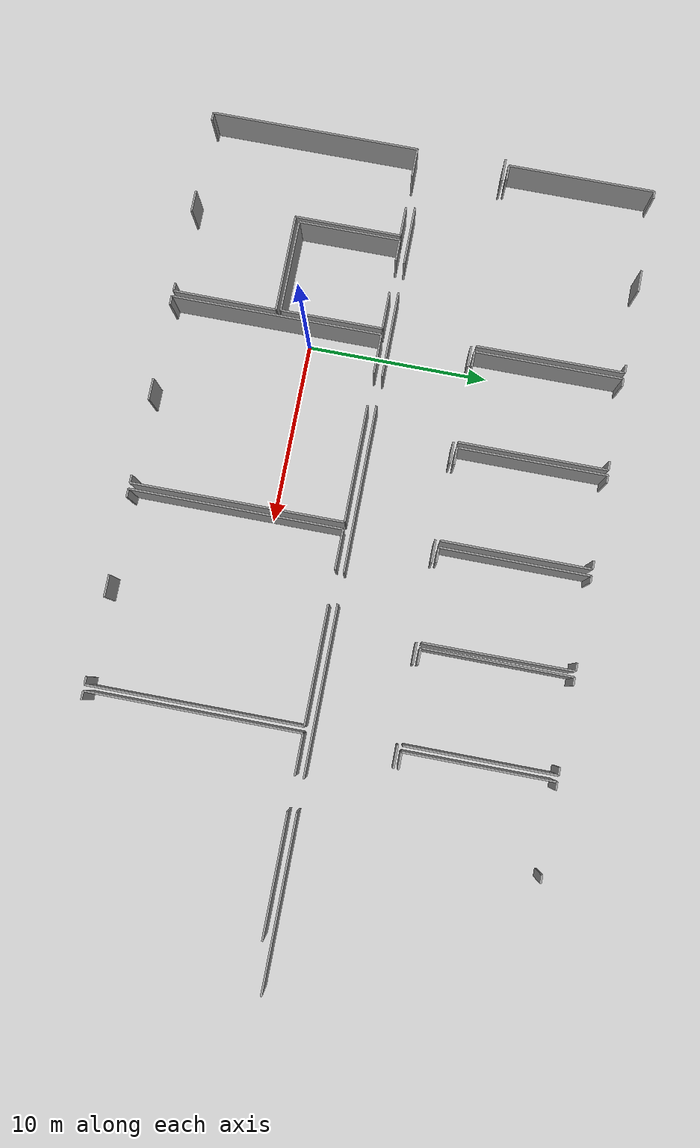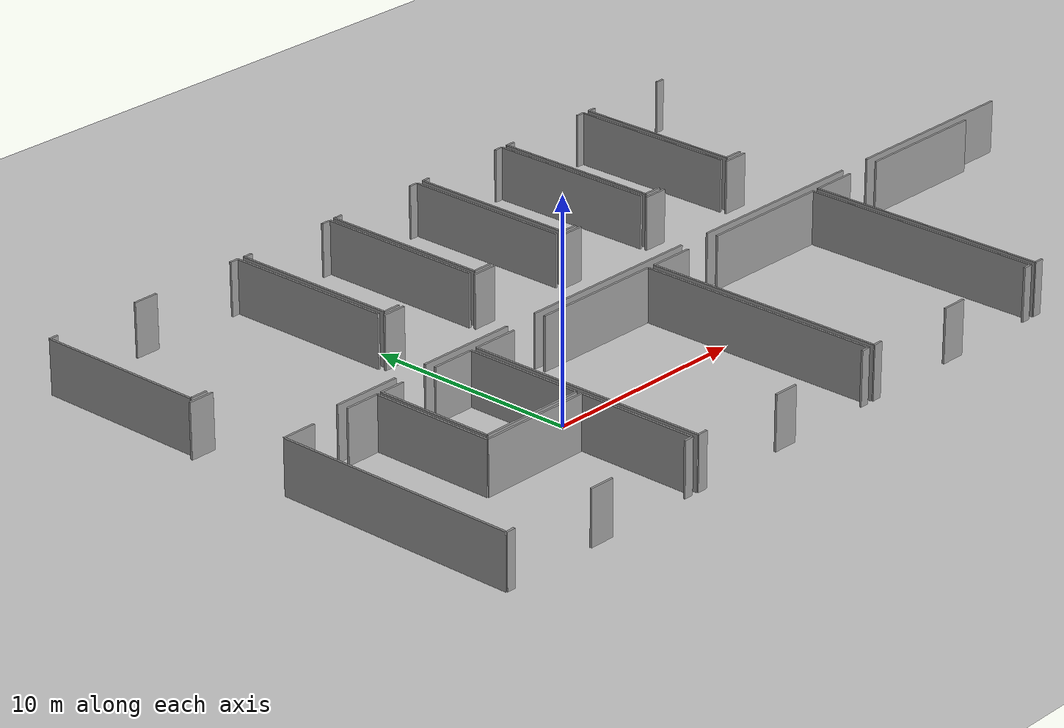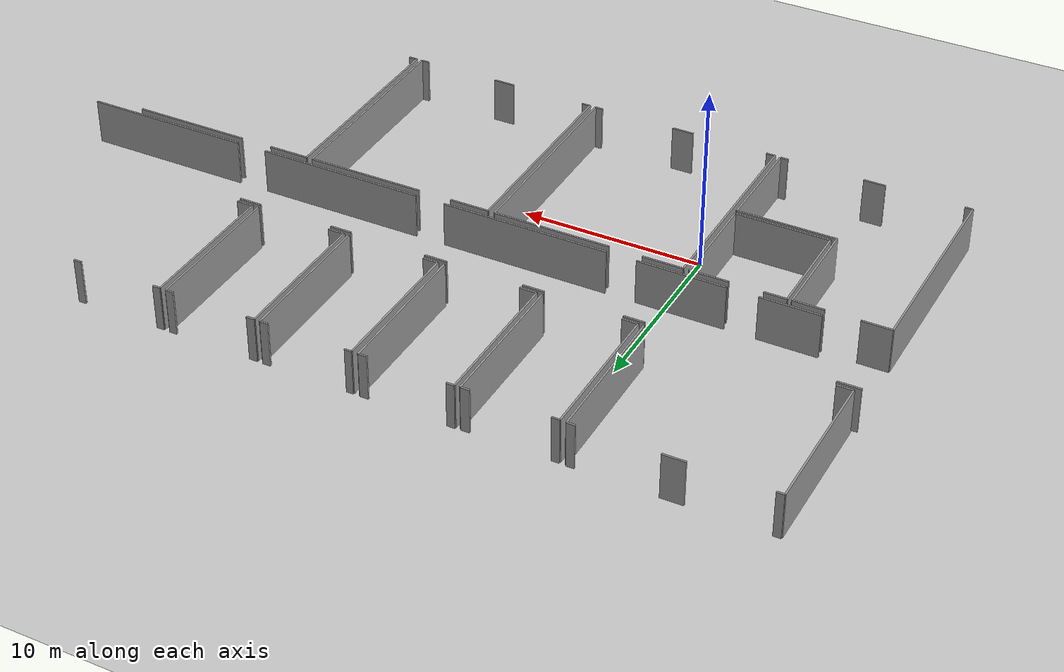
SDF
<sdf version="1.6">
 <world name="default">
  <model name="ground_plane">
   <static>1</static>
   <link name="link">
    <collision name="collision">
     <geometry><plane><normal>0 0 1</normal><size>100 100</size></plane></geometry>
     <surface><friction><ode><mu>100</mu><mu2>50</mu2></ode></friction></surface>
    </collision>
    <visual name="visual">
     <cast_shadows>0</cast_shadows>
     <geometry><plane><normal>0 0 1</normal><size>100 100</size></plane></geometry>
     <material>
      <script><uri>file://media/materials/scripts/gazebo.material</uri><name>Gazebo/Grey</name></script>
     </material>
    </visual>
   </link>
  </model>
  <model name="50037764_PLAN2">
   <static>1</static>
   <link name="Wall_271">
    <collision name="Wall_271_Collision">
     <geometry><box><size>1.23849712746 0.1 2.5</size></box></geometry>
     <pose>0.61924856373 0 1.25 0 0 0</pose>
    </collision>
    <visual name="Wall_271_Visual">
     <pose>0.61924856373 0 1.25 0 0 0</pose>
     <geometry><box><size>1.23849712746 0.1 2.5</size></box></geometry>
     <material>
      <script><uri>file://media/materials/scripts/gazebo.material</uri><name>Gazebo/Grey</name></script>
      <ambient>1 1 1 1</ambient>
     </material>
    </visual>
    <pose>157.565153287 -12.4780873456 0 0 0 3.14159265359</pose>
   </link>
   <link name="Wall_272">
    <collision name="Wall_272_Collision">
     <geometry><box><size>1.18689308048 0.1 2.5</size></box></geometry>
     <pose>0.593446540241 0 1.25 0 0 0</pose>
    </collision>
    <visual name="Wall_272_Visual">
     <pose>0.593446540241 0 1.25 0 0 0</pose>
     <geometry><box><size>1.18689308048 0.1 2.5</size></box></geometry>
     <material>
      <script><uri>file://media/materials/scripts/gazebo.material</uri><name>Gazebo/Grey</name></script>
      <ambient>1 1 1 1</ambient>
     </material>
    </visual>
    <pose>152.171386446 -12.4780873456 0 0 0 3.14159265359</pose>
   </link>
   <link name="Wall_273">
    <collision name="Wall_273_Collision">
     <geometry><box><size>1.23875133459 0.1 2.5</size></box></geometry>
     <pose>0.619375667294 0 1.25 0 0 0</pose>
    </collision>
    <visual name="Wall_273_Visual">
     <pose>0.619375667294 0 1.25 0 0 0</pose>
     <geometry><box><size>1.23875133459 0.1 2.5</size></box></geometry>
     <material>
      <script><uri>file://media/materials/scripts/gazebo.material</uri><name>Gazebo/Grey</name></script>
      <ambient>1 1 1 1</ambient>
     </material>
    </visual>
    <pose>146.759316691 -12.4780873456 0 0 0 3.14159265359</pose>
   </link>
   <link name="Wall_274">
    <collision name="Wall_274_Collision">
     <geometry><box><size>1.17291168844 0.1 2.5</size></box></geometry>
     <pose>0.586455844222 0 1.25 0 0 0</pose>
    </collision>
    <visual name="Wall_274_Visual">
     <pose>0.586455844222 0 1.25 0 0 0</pose>
     <geometry><box><size>1.17291168844 0.1 2.5</size></box></geometry>
     <material>
      <script><uri>file://media/materials/scripts/gazebo.material</uri><name>Gazebo/Grey</name></script>
      <ambient>1 1 1 1</ambient>
     </material>
    </visual>
    <pose>141.341145966 -12.4780873456 0 0 0 3.14159265359</pose>
   </link>
   <link name="Wall_275">
    <collision name="Wall_275_Collision">
     <geometry><box><size>1.13350958361 0.1 2.5</size></box></geometry>
     <pose>0.566754791804 0 1.25 0 0 0</pose>
    </collision>
    <visual name="Wall_275_Visual">
     <pose>0.566754791804 0 1.25 0 0 0</pose>
     <geometry><box><size>1.13350958361 0.1 2.5</size></box></geometry>
     <material>
      <script><uri>file://media/materials/scripts/gazebo.material</uri><name>Gazebo/Grey</name></script>
      <ambient>1 1 1 1</ambient>
     </material>
    </visual>
    <pose>135.953225888 -12.4780873456 0 0 0 3.14159265359</pose>
   </link>
   <link name="Wall_276">
    <collision name="Wall_276_Collision">
     <geometry><box><size>1.23442981341 0.1 2.5</size></box></geometry>
     <pose>0.617214906706 0 1.25 0 0 0</pose>
    </collision>
    <visual name="Wall_276_Visual">
     <pose>0.617214906706 0 1.25 0 0 0</pose>
     <geometry><box><size>1.23442981341 0.1 2.5</size></box></geometry>
     <material>
      <script><uri>file://media/materials/scripts/gazebo.material</uri><name>Gazebo/Grey</name></script>
      <ambient>1 1 1 1</ambient>
     </material>
    </visual>
    <pose>125.183232498 -12.4780873456 0 0 0 3.14159265359</pose>
   </link>
   <link name="Wall_281">
    <collision name="Wall_281_Collision">
     <geometry><box><size>3.2530886166 0.1 2.5</size></box></geometry>
     <pose>1.6265443083 0 1.25 0 0 0</pose>
    </collision>
    <visual name="Wall_281_Visual">
     <pose>1.6265443083 0 1.25 0 0 0</pose>
     <geometry><box><size>3.2530886166 0.1 2.5</size></box></geometry>
     <material>
      <script><uri>file://media/materials/scripts/gazebo.material</uri><name>Gazebo/Grey</name></script>
      <ambient>1 1 1 1</ambient>
     </material>
    </visual>
    <pose>127.630484519 -16.8886826987 0 0 0 0.0</pose>
   </link>
   <link name="Wall_282">
    <collision name="Wall_282_Collision">
     <geometry><box><size>4.8027352687 0.1 2.5</size></box></geometry>
     <pose>2.40136763435 0 1.25 0 0 0</pose>
    </collision>
    <visual name="Wall_282_Visual">
     <pose>2.40136763435 0 1.25 0 0 0</pose>
     <geometry><box><size>4.8027352687 0.1 2.5</size></box></geometry>
     <material>
      <script><uri>file://media/materials/scripts/gazebo.material</uri><name>Gazebo/Grey</name></script>
      <ambient>1 1 1 1</ambient>
     </material>
    </visual>
    <pose>132.553459759 -16.8886826987 0 0 0 0.0</pose>
   </link>
   <link name="Wall_283">
    <collision name="Wall_283_Collision">
     <geometry><box><size>9.1628959276 0.1 2.5</size></box></geometry>
     <pose>4.5814479638 0 1.25 0 0 0</pose>
    </collision>
    <visual name="Wall_283_Visual">
     <pose>4.5814479638 0 1.25 0 0 0</pose>
     <geometry><box><size>9.1628959276 0.1 2.5</size></box></geometry>
     <material>
      <script><uri>file://media/materials/scripts/gazebo.material</uri><name>Gazebo/Grey</name></script>
      <ambient>1 1 1 1</ambient>
     </material>
    </visual>
    <pose>138.999135696 -16.8886826987 0 0 0 0.0</pose>
   </link>
   <link name="Wall_284">
    <collision name="Wall_284_Collision">
     <geometry><box><size>9.12756113681 0.1 2.5</size></box></geometry>
     <pose>4.56378056841 0 1.25 0 0 0</pose>
    </collision>
    <visual name="Wall_284_Visual">
     <pose>4.56378056841 0 1.25 0 0 0</pose>
     <geometry><box><size>9.12756113681 0.1 2.5</size></box></geometry>
     <material>
      <script><uri>file://media/materials/scripts/gazebo.material</uri><name>Gazebo/Grey</name></script>
      <ambient>1 1 1 1</ambient>
     </material>
    </visual>
    <pose>149.804463877 -16.8886826987 0 0 0 0.0</pose>
   </link>
   <link name="Wall_285">
    <collision name="Wall_285_Collision">
     <geometry><box><size>9.1110376735 0.1 2.5</size></box></geometry>
     <pose>4.55551883675 0 1.25 0 0 0</pose>
    </collision>
    <visual name="Wall_285_Visual">
     <pose>4.55551883675 0 1.25 0 0 0</pose>
     <geometry><box><size>9.1110376735 0.1 2.5</size></box></geometry>
     <material>
      <script><uri>file://media/materials/scripts/gazebo.material</uri><name>Gazebo/Grey</name></script>
      <ambient>1 1 1 1</ambient>
     </material>
    </visual>
    <pose>160.620468758 -16.8886826987 0 0 0 0.0</pose>
   </link>
   <link name="Wall_297">
    <collision name="Wall_297_Collision">
     <geometry><box><size>0.859220092531 0.1 2.5</size></box></geometry>
     <pose>0.429610046266 0 1.25 0 0 0</pose>
    </collision>
    <visual name="Wall_297_Visual">
     <pose>0.429610046266 0 1.25 0 0 0</pose>
     <geometry><box><size>0.859220092531 0.1 2.5</size></box></geometry>
     <material>
      <script><uri>file://media/materials/scripts/gazebo.material</uri><name>Gazebo/Grey</name></script>
      <ambient>1 1 1 1</ambient>
     </material>
    </visual>
    <pose>125.109258224 -12.2253546189 0 0 0 3.14159265359</pose>
   </link>
   <link name="Wall_298">
    <collision name="Wall_298_Collision">
     <geometry><box><size>8.12214652499 0.1 2.5</size></box></geometry>
     <pose>4.06107326249 0 1.25 0 0 0</pose>
    </collision>
    <visual name="Wall_298_Visual">
     <pose>4.06107326249 0 1.25 0 0 0</pose>
     <geometry><box><size>8.12214652499 0.1 2.5</size></box></geometry>
     <material>
      <script><uri>file://media/materials/scripts/gazebo.material</uri><name>Gazebo/Grey</name></script>
      <ambient>1 1 1 1</ambient>
     </material>
    </visual>
    <pose>124.250038131 -12.2253546189 0 0 0 1.57079632679</pose>
   </link>
   <link name="Wall_299">
    <collision name="Wall_299_Collision">
     <geometry><box><size>0.404951954853 0.1 2.5</size></box></geometry>
     <pose>0.202475977426 0 1.25 0 0 0</pose>
    </collision>
    <visual name="Wall_299_Visual">
     <pose>0.202475977426 0 1.25 0 0 0</pose>
     <geometry><box><size>0.404951954853 0.1 2.5</size></box></geometry>
     <material>
      <script><uri>file://media/materials/scripts/gazebo.material</uri><name>Gazebo/Grey</name></script>
      <ambient>1 1 1 1</ambient>
     </material>
    </visual>
    <pose>124.250038131 -4.10320809395 0 0 0 0.0</pose>
   </link>
   <link name="Wall_300">
    <collision name="Wall_300_Collision">
     <geometry><box><size>1.20417916518 0.1 2.5</size></box></geometry>
     <pose>0.602089582592 0 1.25 0 0 0</pose>
    </collision>
    <visual name="Wall_300_Visual">
     <pose>0.602089582592 0 1.25 0 0 0</pose>
     <geometry><box><size>1.20417916518 0.1 2.5</size></box></geometry>
     <material>
      <script><uri>file://media/materials/scripts/gazebo.material</uri><name>Gazebo/Grey</name></script>
      <ambient>1 1 1 1</ambient>
     </material>
    </visual>
    <pose>128.869490061 -4.10320809395 0 0 0 0.0</pose>
   </link>
   <link name="Wall_301">
    <collision name="Wall_301_Collision">
     <geometry><box><size>0.429864253394 0.1 2.5</size></box></geometry>
     <pose>0.214932126697 0 1.25 0 0 0</pose>
    </collision>
    <visual name="Wall_301_Visual">
     <pose>0.214932126697 0 1.25 0 0 0</pose>
     <geometry><box><size>0.429864253394 0.1 2.5</size></box></geometry>
     <material>
      <script><uri>file://media/materials/scripts/gazebo.material</uri><name>Gazebo/Grey</name></script>
      <ambient>1 1 1 1</ambient>
     </material>
    </visual>
    <pose>134.2881692 -4.10320809395 0 0 0 0.0</pose>
   </link>
   <link name="Wall_302">
    <collision name="Wall_302_Collision">
     <geometry><box><size>8.12221795526 0.1 2.5</size></box></geometry>
     <pose>4.06110897763 0 1.25 0 0 0</pose>
    </collision>
    <visual name="Wall_302_Visual">
     <pose>4.06110897763 0 1.25 0 0 0</pose>
     <geometry><box><size>8.12221795526 0.1 2.5</size></box></geometry>
     <material>
      <script><uri>file://media/materials/scripts/gazebo.material</uri><name>Gazebo/Grey</name></script>
      <ambient>1 1 1 1</ambient>
     </material>
    </visual>
    <pose>134.718033454 -4.10320809395 0 0 0 -1.56660241631</pose>
   </link>
   <link name="Wall_303">
    <collision name="Wall_303_Collision">
     <geometry><box><size>0.859474299659 0.1 2.5</size></box></geometry>
     <pose>0.42973714983 0 1.25 0 0 0</pose>
    </collision>
    <visual name="Wall_303_Visual">
     <pose>0.42973714983 0 1.25 0 0 0</pose>
     <geometry><box><size>0.859474299659 0.1 2.5</size></box></geometry>
     <material>
      <script><uri>file://media/materials/scripts/gazebo.material</uri><name>Gazebo/Grey</name></script>
      <ambient>1 1 1 1</ambient>
     </material>
    </visual>
    <pose>135.915349026 -12.2473435355 0 0 0 3.14159265359</pose>
   </link>
   <link name="Wall_304">
    <collision name="Wall_304_Collision">
     <geometry><box><size>8.114621994 0.1 2.5</size></box></geometry>
     <pose>4.057310997 0 1.25 0 0 0</pose>
    </collision>
    <visual name="Wall_304_Visual">
     <pose>4.057310997 0 1.25 0 0 0</pose>
     <geometry><box><size>8.114621994 0.1 2.5</size></box></geometry>
     <material>
      <script><uri>file://media/materials/scripts/gazebo.material</uri><name>Gazebo/Grey</name></script>
      <ambient>1 1 1 1</ambient>
     </material>
    </visual>
    <pose>135.055874727 -12.2473435355 0 0 0 1.57079632679</pose>
   </link>
   <link name="Wall_305">
    <collision name="Wall_305_Collision">
     <geometry><box><size>0.430626874778 0.1 2.5</size></box></geometry>
     <pose>0.215313437389 0 1.25 0 0 0</pose>
    </collision>
    <visual name="Wall_305_Visual">
     <pose>0.215313437389 0 1.25 0 0 0</pose>
     <geometry><box><size>0.430626874778 0.1 2.5</size></box></geometry>
     <material>
      <script><uri>file://media/materials/scripts/gazebo.material</uri><name>Gazebo/Grey</name></script>
      <ambient>1 1 1 1</ambient>
     </material>
    </visual>
    <pose>135.055874727 -4.13272154151 0 0 0 0.0</pose>
   </link>
   <link name="Wall_306">
    <collision name="Wall_306_Collision">
     <geometry><box><size>0.481976714627 0.1 2.5</size></box></geometry>
     <pose>0.240988357314 0 1.25 0 0 0</pose>
    </collision>
    <visual name="Wall_306_Visual">
     <pose>0.240988357314 0 1.25 0 0 0</pose>
     <geometry><box><size>0.481976714627 0.1 2.5</size></box></geometry>
     <material>
      <script><uri>file://media/materials/scripts/gazebo.material</uri><name>Gazebo/Grey</name></script>
      <ambient>1 1 1 1</ambient>
     </material>
    </visual>
    <pose>139.658040571 -4.13272154151 0 0 0 0.0</pose>
   </link>
   <link name="Wall_307">
    <collision name="Wall_307_Collision">
     <geometry><box><size>8.1146224758 0.1 2.5</size></box></geometry>
     <pose>4.0573112379 0 1.25 0 0 0</pose>
    </collision>
    <visual name="Wall_307_Visual">
     <pose>4.0573112379 0 1.25 0 0 0</pose>
     <geometry><box><size>8.1146224758 0.1 2.5</size></box></geometry>
     <material>
      <script><uri>file://media/materials/scripts/gazebo.material</uri><name>Gazebo/Grey</name></script>
      <ambient>1 1 1 1</ambient>
     </material>
    </visual>
    <pose>140.140017286 -4.13272154151 0 0 0 -1.57114092428</pose>
   </link>
   <link name="Wall_308">
    <collision name="Wall_308_Collision">
     <geometry><box><size>0.935990645178 0.1 2.5</size></box></geometry>
     <pose>0.467995322589 0 1.25 0 0 0</pose>
    </collision>
    <visual name="Wall_308_Visual">
     <pose>0.467995322589 0 1.25 0 0 0</pose>
     <geometry><box><size>0.935990645178 0.1 2.5</size></box></geometry>
     <material>
      <script><uri>file://media/materials/scripts/gazebo.material</uri><name>Gazebo/Grey</name></script>
      <ambient>1 1 1 1</ambient>
     </material>
    </visual>
    <pose>141.3637704 -12.2341501856 0 0 0 3.14159265359</pose>
   </link>
   <link name="Wall_309">
    <collision name="Wall_309_Collision">
     <geometry><box><size>8.13045909807 0.1 2.5</size></box></geometry>
     <pose>4.06522954904 0 1.25 0 0 0</pose>
    </collision>
    <visual name="Wall_309_Visual">
     <pose>4.06522954904 0 1.25 0 0 0</pose>
     <geometry><box><size>8.13045909807 0.1 2.5</size></box></geometry>
     <material>
      <script><uri>file://media/materials/scripts/gazebo.material</uri><name>Gazebo/Grey</name></script>
      <ambient>1 1 1 1</ambient>
     </material>
    </visual>
    <pose>140.427779755 -12.2341501856 0 0 0 1.57079632679</pose>
   </link>
   <link name="Wall_310">
    <collision name="Wall_310_Collision">
     <geometry><box><size>0.434694188825 0.1 2.5</size></box></geometry>
     <pose>0.217347094413 0 1.25 0 0 0</pose>
    </collision>
    <visual name="Wall_310_Visual">
     <pose>0.217347094413 0 1.25 0 0 0</pose>
     <geometry><box><size>0.434694188825 0.1 2.5</size></box></geometry>
     <material>
      <script><uri>file://media/materials/scripts/gazebo.material</uri><name>Gazebo/Grey</name></script>
      <ambient>1 1 1 1</ambient>
     </material>
    </visual>
    <pose>140.427779755 -4.1036910875 0 0 0 0.0</pose>
   </link>
   <link name="Wall_311">
    <collision name="Wall_311_Collision">
     <geometry><box><size>0.465199044181 0.1 2.5</size></box></geometry>
     <pose>0.232599522091 0 1.25 0 0 0</pose>
    </collision>
    <visual name="Wall_311_Visual">
     <pose>0.232599522091 0 1.25 0 0 0</pose>
     <geometry><box><size>0.465199044181 0.1 2.5</size></box></geometry>
     <material>
      <script><uri>file://media/materials/scripts/gazebo.material</uri><name>Gazebo/Grey</name></script>
      <ambient>1 1 1 1</ambient>
     </material>
    </visual>
    <pose>145.059687834 -4.1036910875 0 0 0 0.0</pose>
   </link>
   <link name="Wall_312">
    <collision name="Wall_312_Collision">
     <geometry><box><size>8.13046024657 0.1 2.5</size></box></geometry>
     <pose>4.06523012328 0 1.25 0 0 0</pose>
    </collision>
    <visual name="Wall_312_Visual">
     <pose>4.06523012328 0 1.25 0 0 0</pose>
     <geometry><box><size>8.13046024657 0.1 2.5</size></box></geometry>
     <material>
      <script><uri>file://media/materials/scripts/gazebo.material</uri><name>Gazebo/Grey</name></script>
      <ambient>1 1 1 1</ambient>
     </material>
    </visual>
    <pose>145.524886878 -4.1036910875 0 0 0 -1.57132784915</pose>
   </link>
   <link name="Wall_313">
    <collision name="Wall_313_Collision">
     <geometry><box><size>0.824139508872 0.1 2.5</size></box></geometry>
     <pose>0.412069754436 0 1.25 0 0 0</pose>
    </collision>
    <visual name="Wall_313_Visual">
     <pose>0.412069754436 0 1.25 0 0 0</pose>
     <geometry><box><size>0.824139508872 0.1 2.5</size></box></geometry>
     <material>
      <script><uri>file://media/materials/scripts/gazebo.material</uri><name>Gazebo/Grey</name></script>
      <ambient>1 1 1 1</ambient>
     </material>
    </visual>
    <pose>146.709237887 -12.226320606 0 0 0 3.14159265359</pose>
   </link>
   <link name="Wall_314">
    <collision name="Wall_314_Collision">
     <geometry><box><size>8.11853678377 0.1 2.5</size></box></geometry>
     <pose>4.05926839189 0 1.25 0 0 0</pose>
    </collision>
    <visual name="Wall_314_Visual">
     <pose>4.05926839189 0 1.25 0 0 0</pose>
     <geometry><box><size>8.11853678377 0.1 2.5</size></box></geometry>
     <material>
      <script><uri>file://media/materials/scripts/gazebo.material</uri><name>Gazebo/Grey</name></script>
      <ambient>1 1 1 1</ambient>
     </material>
    </visual>
    <pose>145.885098378 -12.226320606 0 0 0 1.57079632679</pose>
   </link>
   <link name="Wall_315">
    <collision name="Wall_315_Collision">
     <geometry><box><size>0.379531242056 0.1 2.5</size></box></geometry>
     <pose>0.189765621028 0 1.25 0 0 0</pose>
    </collision>
    <visual name="Wall_315_Visual">
     <pose>0.189765621028 0 1.25 0 0 0</pose>
     <geometry><box><size>0.379531242056 0.1 2.5</size></box></geometry>
     <material>
      <script><uri>file://media/materials/scripts/gazebo.material</uri><name>Gazebo/Grey</name></script>
      <ambient>1 1 1 1</ambient>
     </material>
    </visual>
    <pose>145.885098378 -4.10778382226 0 0 0 0.0</pose>
   </link>
   <link name="Wall_316">
    <collision name="Wall_316_Collision">
     <geometry><box><size>0.440795159896 0.1 2.5</size></box></geometry>
     <pose>0.220397579948 0 1.25 0 0 0</pose>
    </collision>
    <visual name="Wall_316_Visual">
     <pose>0.220397579948 0 1.25 0 0 0</pose>
     <geometry><box><size>0.440795159896 0.1 2.5</size></box></geometry>
     <material>
      <script><uri>file://media/materials/scripts/gazebo.material</uri><name>Gazebo/Grey</name></script>
      <ambient>1 1 1 1</ambient>
     </material>
    </visual>
    <pose>150.490823123 -4.10778382226 0 0 0 0.0</pose>
   </link>
   <link name="Wall_317">
    <collision name="Wall_317_Collision">
     <geometry><box><size>8.11864645203 0.1 2.5</size></box></geometry>
     <pose>4.05932322601 0 1.25 0 0 0</pose>
    </collision>
    <visual name="Wall_317_Visual">
     <pose>4.05932322601 0 1.25 0 0 0</pose>
     <geometry><box><size>8.11864645203 0.1 2.5</size></box></geometry>
     <material>
      <script><uri>file://media/materials/scripts/gazebo.material</uri><name>Gazebo/Grey</name></script>
      <ambient>1 1 1 1</ambient>
     </material>
    </visual>
    <pose>150.931618283 -4.10778382226 0 0 0 -1.56559859174</pose>
   </link>
   <link name="Wall_318">
    <collision name="Wall_318_Collision">
     <geometry><box><size>0.890233362143 0.1 2.5</size></box></geometry>
     <pose>0.445116681072 0 1.25 0 0 0</pose>
    </collision>
    <visual name="Wall_318_Visual">
     <pose>0.445116681072 0 1.25 0 0 0</pose>
     <geometry><box><size>0.890233362143 0.1 2.5</size></box></geometry>
     <material>
      <script><uri>file://media/materials/scripts/gazebo.material</uri><name>Gazebo/Grey</name></script>
      <ambient>1 1 1 1</ambient>
     </material>
    </visual>
    <pose>152.138339519 -12.216762418 0 0 0 3.14159265359</pose>
   </link>
   <link name="Wall_319">
    <collision name="Wall_319_Collision">
     <geometry><box><size>8.09443794804 0.1 2.5</size></box></geometry>
     <pose>4.04721897402 0 1.25 0 0 0</pose>
    </collision>
    <visual name="Wall_319_Visual">
     <pose>4.04721897402 0 1.25 0 0 0</pose>
     <geometry><box><size>8.09443794804 0.1 2.5</size></box></geometry>
     <material>
      <script><uri>file://media/materials/scripts/gazebo.material</uri><name>Gazebo/Grey</name></script>
      <ambient>1 1 1 1</ambient>
     </material>
    </visual>
    <pose>151.248106157 -12.216762418 0 0 0 1.57079632679</pose>
   </link>
   <link name="Wall_320">
    <collision name="Wall_320_Collision">
     <geometry><box><size>0.451980273527 0.1 2.5</size></box></geometry>
     <pose>0.225990136763 0 1.25 0 0 0</pose>
    </collision>
    <visual name="Wall_320_Visual">
     <pose>0.225990136763 0 1.25 0 0 0</pose>
     <geometry><box><size>0.451980273527 0.1 2.5</size></box></geometry>
     <material>
      <script><uri>file://media/materials/scripts/gazebo.material</uri><name>Gazebo/Grey</name></script>
      <ambient>1 1 1 1</ambient>
     </material>
    </visual>
    <pose>151.248106157 -4.12232446998 0 0 0 0.0</pose>
   </link>
   <link name="Wall_321">
    <collision name="Wall_321_Collision">
     <geometry><box><size>0.420458589659 0.1 2.5</size></box></geometry>
     <pose>0.210229294829 0 1.25 0 0 0</pose>
    </collision>
    <visual name="Wall_321_Visual">
     <pose>0.210229294829 0 1.25 0 0 0</pose>
     <geometry><box><size>0.420458589659 0.1 2.5</size></box></geometry>
     <material>
      <script><uri>file://media/materials/scripts/gazebo.material</uri><name>Gazebo/Grey</name></script>
      <ambient>1 1 1 1</ambient>
     </material>
    </visual>
    <pose>155.89552087 -4.12232446998 0 0 0 0.0</pose>
   </link>
   <link name="Wall_322">
    <collision name="Wall_322_Collision">
     <geometry><box><size>8.09444371206 0.1 2.5</size></box></geometry>
     <pose>4.04722185603 0 1.25 0 0 0</pose>
    </collision>
    <visual name="Wall_322_Visual">
     <pose>4.04722185603 0 1.25 0 0 0</pose>
     <geometry><box><size>8.09444371206 0.1 2.5</size></box></geometry>
     <material>
      <script><uri>file://media/materials/scripts/gazebo.material</uri><name>Gazebo/Grey</name></script>
      <ambient>1 1 1 1</ambient>
     </material>
    </visual>
    <pose>156.31597946 -4.12232446998 0 0 0 -1.56960293124</pose>
   </link>
   <link name="Wall_323">
    <collision name="Wall_323_Collision">
     <geometry><box><size>0.912095175149 0.1 2.5</size></box></geometry>
     <pose>0.456047587574 0 1.25 0 0 0</pose>
    </collision>
    <visual name="Wall_323_Visual">
     <pose>0.456047587574 0 1.25 0 0 0</pose>
     <geometry><box><size>0.912095175149 0.1 2.5</size></box></geometry>
     <material>
      <script><uri>file://media/materials/scripts/gazebo.material</uri><name>Gazebo/Grey</name></script>
      <ambient>1 1 1 1</ambient>
     </material>
    </visual>
    <pose>157.567441151 -12.216762418 0 0 0 3.14159265359</pose>
   </link>
   <link name="Wall_324">
    <collision name="Wall_324_Collision">
     <geometry><box><size>8.08487976003 0.1 2.5</size></box></geometry>
     <pose>4.04243988001 0 1.25 0 0 0</pose>
    </collision>
    <visual name="Wall_324_Visual">
     <pose>4.04243988001 0 1.25 0 0 0</pose>
     <geometry><box><size>8.08487976003 0.1 2.5</size></box></geometry>
     <material>
      <script><uri>file://media/materials/scripts/gazebo.material</uri><name>Gazebo/Grey</name></script>
      <ambient>1 1 1 1</ambient>
     </material>
    </visual>
    <pose>156.655345976 -12.216762418 0 0 0 1.57079632679</pose>
   </link>
   <link name="Wall_325">
    <collision name="Wall_325_Collision">
     <geometry><box><size>0.42528852509 0.1 2.5</size></box></geometry>
     <pose>0.212644262545 0 1.25 0 0 0</pose>
    </collision>
    <visual name="Wall_325_Visual">
     <pose>0.212644262545 0 1.25 0 0 0</pose>
     <geometry><box><size>0.42528852509 0.1 2.5</size></box></geometry>
     <material>
      <script><uri>file://media/materials/scripts/gazebo.material</uri><name>Gazebo/Grey</name></script>
      <ambient>1 1 1 1</ambient>
     </material>
    </visual>
    <pose>156.655345976 -4.13188265799 0 0 0 0.0</pose>
   </link>
   <link name="Wall_326">
    <collision name="Wall_326_Collision">
     <geometry><box><size>0.433423153185 0.1 2.5</size></box></geometry>
     <pose>0.216711576593 0 1.25 0 0 0</pose>
    </collision>
    <visual name="Wall_326_Visual">
     <pose>0.216711576593 0 1.25 0 0 0</pose>
     <geometry><box><size>0.433423153185 0.1 2.5</size></box></geometry>
     <material>
      <script><uri>file://media/materials/scripts/gazebo.material</uri><name>Gazebo/Grey</name></script>
      <ambient>1 1 1 1</ambient>
     </material>
    </visual>
    <pose>161.322843053 -4.13188265799 0 0 0 0.0</pose>
   </link>
   <link name="Wall_344">
    <collision name="Wall_344_Collision">
     <geometry><box><size>0.439524124256 0.1 2.5</size></box></geometry>
     <pose>0.219762062128 0 1.25 0 0 0</pose>
    </collision>
    <visual name="Wall_344_Visual">
     <pose>0.219762062128 0 1.25 0 0 0</pose>
     <geometry><box><size>0.439524124256 0.1 2.5</size></box></geometry>
     <material>
      <script><uri>file://media/materials/scripts/gazebo.material</uri><name>Gazebo/Grey</name></script>
      <ambient>1 1 1 1</ambient>
     </material>
    </visual>
    <pose>134.746758859 -28.9119934923 0 0 0 3.14159265359</pose>
   </link>
   <link name="Wall_345">
    <collision name="Wall_345_Collision">
     <geometry><box><size>1.19451929432 0.1 2.5</size></box></geometry>
     <pose>0.597259647161 0 1.25 0 0 0</pose>
    </collision>
    <visual name="Wall_345_Visual">
     <pose>0.597259647161 0 1.25 0 0 0</pose>
     <geometry><box><size>1.19451929432 0.1 2.5</size></box></geometry>
     <material>
      <script><uri>file://media/materials/scripts/gazebo.material</uri><name>Gazebo/Grey</name></script>
      <ambient>1 1 1 1</ambient>
     </material>
    </visual>
    <pose>130.111800295 -28.9119934923 0 0 0 3.14159265359</pose>
   </link>
   <link name="Wall_346">
    <collision name="Wall_346_Collision">
     <geometry><box><size>0.420458589659 0.1 2.5</size></box></geometry>
     <pose>0.210229294829 0 1.25 0 0 0</pose>
    </collision>
    <visual name="Wall_346_Visual">
     <pose>0.210229294829 0 1.25 0 0 0</pose>
     <geometry><box><size>0.420458589659 0.1 2.5</size></box></geometry>
     <material>
      <script><uri>file://media/materials/scripts/gazebo.material</uri><name>Gazebo/Grey</name></script>
      <ambient>1 1 1 1</ambient>
     </material>
    </visual>
    <pose>124.674055621 -28.9119934923 0 0 0 3.14159265359</pose>
   </link>
   <link name="Wall_347">
    <collision name="Wall_347_Collision">
     <geometry><box><size>11.5322843053 0.1 2.5</size></box></geometry>
     <pose>5.76614215263 0 1.25 0 0 0</pose>
    </collision>
    <visual name="Wall_347_Visual">
     <pose>5.76614215263 0 1.25 0 0 0</pose>
     <geometry><box><size>11.5322843053 0.1 2.5</size></box></geometry>
     <material>
      <script><uri>file://media/materials/scripts/gazebo.material</uri><name>Gazebo/Grey</name></script>
      <ambient>1 1 1 1</ambient>
     </material>
    </visual>
    <pose>124.253597031 -28.9119934923 0 0 0 1.57079632679</pose>
   </link>
   <link name="Wall_348">
    <collision name="Wall_348_Collision">
     <geometry><box><size>1.60760587727 0.1 2.5</size></box></geometry>
     <pose>0.803802938634 0 1.25 0 0 0</pose>
    </collision>
    <visual name="Wall_348_Visual">
     <pose>0.803802938634 0 1.25 0 0 0</pose>
     <geometry><box><size>1.60760587727 0.1 2.5</size></box></geometry>
     <material>
      <script><uri>file://media/materials/scripts/gazebo.material</uri><name>Gazebo/Grey</name></script>
      <ambient>1 1 1 1</ambient>
     </material>
    </visual>
    <pose>124.253597031 -17.379709187 0 0 0 0.0</pose>
   </link>
   <link name="Wall_349">
    <collision name="Wall_349_Collision">
     <geometry><box><size>1.67141186639 0.1 2.5</size></box></geometry>
     <pose>0.835705933194 0 1.25 0 0 0</pose>
    </collision>
    <visual name="Wall_349_Visual">
     <pose>0.835705933194 0 1.25 0 0 0</pose>
     <geometry><box><size>1.67141186639 0.1 2.5</size></box></geometry>
     <material>
      <script><uri>file://media/materials/scripts/gazebo.material</uri><name>Gazebo/Grey</name></script>
      <ambient>1 1 1 1</ambient>
     </material>
    </visual>
    <pose>127.691240022 -17.379709187 0 0 0 0.0</pose>
   </link>
   <link name="Wall_350">
    <collision name="Wall_350_Collision">
     <geometry><box><size>5.85609334486 0.1 2.5</size></box></geometry>
     <pose>2.92804667243 0 1.25 0 0 0</pose>
    </collision>
    <visual name="Wall_350_Visual">
     <pose>2.92804667243 0 1.25 0 0 0</pose>
     <geometry><box><size>5.85609334486 0.1 2.5</size></box></geometry>
     <material>
      <script><uri>file://media/materials/scripts/gazebo.material</uri><name>Gazebo/Grey</name></script>
      <ambient>1 1 1 1</ambient>
     </material>
    </visual>
    <pose>129.362651889 -17.379709187 0 0 0 -1.57079632679</pose>
   </link>
   <link name="Wall_351">
    <collision name="Wall_351_Collision">
     <geometry><box><size>5.4026640907 0.1 2.5</size></box></geometry>
     <pose>2.70133204535 0 1.25 0 0 0</pose>
    </collision>
    <visual name="Wall_351_Visual">
     <pose>2.70133204535 0 1.25 0 0 0</pose>
     <geometry><box><size>5.4026640907 0.1 2.5</size></box></geometry>
     <material>
      <script><uri>file://media/materials/scripts/gazebo.material</uri><name>Gazebo/Grey</name></script>
      <ambient>1 1 1 1</ambient>
     </material>
    </visual>
    <pose>129.362651889 -23.2358025319 0 0 0 0.0</pose>
   </link>
   <link name="Wall_352">
    <collision name="Wall_352_Collision">
     <geometry><box><size>5.67622129463 0.1 2.5</size></box></geometry>
     <pose>2.83811064731 0 1.25 0 0 0</pose>
    </collision>
    <visual name="Wall_352_Visual">
     <pose>2.83811064731 0 1.25 0 0 0</pose>
     <geometry><box><size>5.67622129463 0.1 2.5</size></box></geometry>
     <material>
      <script><uri>file://media/materials/scripts/gazebo.material</uri><name>Gazebo/Grey</name></script>
      <ambient>1 1 1 1</ambient>
     </material>
    </visual>
    <pose>134.765315979 -23.2358025319 0 0 0 -1.5740656062</pose>
   </link>
   <link name="Wall_353">
    <collision name="Wall_353_Collision">
     <geometry><box><size>5.13117087803 0.1 2.5</size></box></geometry>
     <pose>2.56558543902 0 1.25 0 0 0</pose>
    </collision>
    <visual name="Wall_353_Visual">
     <pose>2.56558543902 0 1.25 0 0 0</pose>
     <geometry><box><size>5.13117087803 0.1 2.5</size></box></geometry>
     <material>
      <script><uri>file://media/materials/scripts/gazebo.material</uri><name>Gazebo/Grey</name></script>
      <ambient>1 1 1 1</ambient>
     </material>
    </visual>
    <pose>134.739895267 -22.9770196756 0 0 0 3.14159265359</pose>
   </link>
   <link name="Wall_354">
    <collision name="Wall_354_Collision">
     <geometry><box><size>5.60923280289 0.1 2.5</size></box></geometry>
     <pose>2.80461640144 0 1.25 0 0 0</pose>
    </collision>
    <visual name="Wall_354_Visual">
     <pose>2.80461640144 0 1.25 0 0 0</pose>
     <geometry><box><size>5.60923280289 0.1 2.5</size></box></geometry>
     <material>
      <script><uri>file://media/materials/scripts/gazebo.material</uri><name>Gazebo/Grey</name></script>
      <ambient>1 1 1 1</ambient>
     </material>
    </visual>
    <pose>129.608724389 -22.9770196756 0 0 0 1.57079632679</pose>
   </link>
   <link name="Wall_355">
    <collision name="Wall_355_Collision">
     <geometry><box><size>1.21256800041 0.1 2.5</size></box></geometry>
     <pose>0.606284000203 0 1.25 0 0 0</pose>
    </collision>
    <visual name="Wall_355_Visual">
     <pose>0.606284000203 0 1.25 0 0 0</pose>
     <geometry><box><size>1.21256800041 0.1 2.5</size></box></geometry>
     <material>
      <script><uri>file://media/materials/scripts/gazebo.material</uri><name>Gazebo/Grey</name></script>
      <ambient>1 1 1 1</ambient>
     </material>
    </visual>
    <pose>129.608724389 -17.3677868727 0 0 0 0.0</pose>
   </link>
   <link name="Wall_356">
    <collision name="Wall_356_Collision">
     <geometry><box><size>2.08551527785 0.1 2.5</size></box></geometry>
     <pose>1.04275763892 0 1.25 0 0 0</pose>
    </collision>
    <visual name="Wall_356_Visual">
     <pose>1.04275763892 0 1.25 0 0 0</pose>
     <geometry><box><size>2.08551527785 0.1 2.5</size></box></geometry>
     <material>
      <script><uri>file://media/materials/scripts/gazebo.material</uri><name>Gazebo/Grey</name></script>
      <ambient>1 1 1 1</ambient>
     </material>
    </visual>
    <pose>132.64192384 -17.3677868727 0 0 0 0.0</pose>
   </link>
   <link name="Wall_357">
    <collision name="Wall_357_Collision">
     <geometry><box><size>5.60924663325 0.1 2.5</size></box></geometry>
     <pose>2.80462331663 0 1.25 0 0 0</pose>
    </collision>
    <visual name="Wall_357_Visual">
     <pose>2.80462331663 0 1.25 0 0 0</pose>
     <geometry><box><size>5.60924663325 0.1 2.5</size></box></geometry>
     <material>
      <script><uri>file://media/materials/scripts/gazebo.material</uri><name>Gazebo/Grey</name></script>
      <ambient>1 1 1 1</ambient>
     </material>
    </visual>
    <pose>134.727439117 -17.3677868727 0 0 0 -1.5685756793</pose>
   </link>
   <link name="Wall_358">
    <collision name="Wall_358_Collision">
     <geometry><box><size>0.426305353602 0.1 2.5</size></box></geometry>
     <pose>0.213152676801 0 1.25 0 0 0</pose>
    </collision>
    <visual name="Wall_358_Visual">
     <pose>0.213152676801 0 1.25 0 0 0</pose>
     <geometry><box><size>0.426305353602 0.1 2.5</size></box></geometry>
     <material>
      <script><uri>file://media/materials/scripts/gazebo.material</uri><name>Gazebo/Grey</name></script>
      <ambient>1 1 1 1</ambient>
     </material>
    </visual>
    <pose>145.540901927 -28.9440235904 0 0 0 3.14159265359</pose>
   </link>
   <link name="Wall_359">
    <collision name="Wall_359_Collision">
     <geometry><box><size>1.20036605826 0.1 2.5</size></box></geometry>
     <pose>0.600183029132 0 1.25 0 0 0</pose>
    </collision>
    <visual name="Wall_359_Visual">
     <pose>0.600183029132 0 1.25 0 0 0</pose>
     <geometry><box><size>1.20036605826 0.1 2.5</size></box></geometry>
     <material>
      <script><uri>file://media/materials/scripts/gazebo.material</uri><name>Gazebo/Grey</name></script>
      <ambient>1 1 1 1</ambient>
     </material>
    </visual>
    <pose>140.942294982 -28.9440235904 0 0 0 3.14159265359</pose>
   </link>
   <link name="Wall_360">
    <collision name="Wall_360_Collision">
     <geometry><box><size>0.49036554985 0.1 2.5</size></box></geometry>
     <pose>0.245182774925 0 1.25 0 0 0</pose>
    </collision>
    <visual name="Wall_360_Visual">
     <pose>0.245182774925 0 1.25 0 0 0</pose>
     <geometry><box><size>0.49036554985 0.1 2.5</size></box></geometry>
     <material>
      <script><uri>file://media/materials/scripts/gazebo.material</uri><name>Gazebo/Grey</name></script>
      <ambient>1 1 1 1</ambient>
     </material>
    </visual>
    <pose>135.544715034 -28.9440235904 0 0 0 3.14159265359</pose>
   </link>
   <link name="Wall_361">
    <collision name="Wall_361_Collision">
     <geometry><box><size>11.5840917179 0.1 2.5</size></box></geometry>
     <pose>5.79204585897 0 1.25 0 0 0</pose>
    </collision>
    <visual name="Wall_361_Visual">
     <pose>5.79204585897 0 1.25 0 0 0</pose>
     <geometry><box><size>11.5840917179 0.1 2.5</size></box></geometry>
     <material>
      <script><uri>file://media/materials/scripts/gazebo.material</uri><name>Gazebo/Grey</name></script>
      <ambient>1 1 1 1</ambient>
     </material>
    </visual>
    <pose>135.054349484 -28.9440235904 0 0 0 1.57079632679</pose>
   </link>
   <link name="Wall_362">
    <collision name="Wall_362_Collision">
     <geometry><box><size>2.20575524938 0.1 2.5</size></box></geometry>
     <pose>1.10287762469 0 1.25 0 0 0</pose>
    </collision>
    <visual name="Wall_362_Visual">
     <pose>1.10287762469 0 1.25 0 0 0</pose>
     <geometry><box><size>2.20575524938 0.1 2.5</size></box></geometry>
     <material>
      <script><uri>file://media/materials/scripts/gazebo.material</uri><name>Gazebo/Grey</name></script>
      <ambient>1 1 1 1</ambient>
     </material>
    </visual>
    <pose>135.054349484 -17.3599318725 0 0 0 0.0</pose>
   </link>
   <link name="Wall_363">
    <collision name="Wall_363_Collision">
     <geometry><box><size>6.42050943108 0.1 2.5</size></box></geometry>
     <pose>3.21025471554 0 1.25 0 0 0</pose>
    </collision>
    <visual name="Wall_363_Visual">
     <pose>3.21025471554 0 1.25 0 0 0</pose>
     <geometry><box><size>6.42050943108 0.1 2.5</size></box></geometry>
     <material>
      <script><uri>file://media/materials/scripts/gazebo.material</uri><name>Gazebo/Grey</name></script>
      <ambient>1 1 1 1</ambient>
     </material>
    </visual>
    <pose>139.07488942 -17.3599318725 0 0 0 0.0</pose>
   </link>
   <link name="Wall_364">
    <collision name="Wall_364_Collision">
     <geometry><box><size>11.5841810871 0.1 2.5</size></box></geometry>
     <pose>5.79209054356 0 1.25 0 0 0</pose>
    </collision>
    <visual name="Wall_364_Visual">
     <pose>5.79209054356 0 1.25 0 0 0</pose>
     <geometry><box><size>11.5841810871 0.1 2.5</size></box></geometry>
     <material>
      <script><uri>file://media/materials/scripts/gazebo.material</uri><name>Gazebo/Grey</name></script>
      <ambient>1 1 1 1</ambient>
     </material>
    </visual>
    <pose>145.495398851 -17.3599318725 0 0 0 -1.56686828108</pose>
   </link>
   <link name="Wall_365">
    <collision name="Wall_365_Collision">
     <geometry><box><size>0.434948395953 0.1 2.5</size></box></geometry>
     <pose>0.217474197977 0 1.25 0 0 0</pose>
    </collision>
    <visual name="Wall_365_Visual">
     <pose>0.217474197977 0 1.25 0 0 0</pose>
     <geometry><box><size>0.434948395953 0.1 2.5</size></box></geometry>
     <material>
      <script><uri>file://media/materials/scripts/gazebo.material</uri><name>Gazebo/Grey</name></script>
      <ambient>1 1 1 1</ambient>
     </material>
    </visual>
    <pose>156.347501144 -28.9521582185 0 0 0 3.14159265359</pose>
   </link>
   <link name="Wall_366">
    <collision name="Wall_366_Collision">
     <geometry><box><size>1.20494178657 0.1 2.5</size></box></geometry>
     <pose>0.602470893284 0 1.25 0 0 0</pose>
    </collision>
    <visual name="Wall_366_Visual">
     <pose>0.602470893284 0 1.25 0 0 0</pose>
     <geometry><box><size>1.20494178657 0.1 2.5</size></box></geometry>
     <material>
      <script><uri>file://media/materials/scripts/gazebo.material</uri><name>Gazebo/Grey</name></script>
      <ambient>1 1 1 1</ambient>
     </material>
    </visual>
    <pose>151.732624943 -28.9521582185 0 0 0 3.14159265359</pose>
   </link>
   <link name="Wall_367">
    <collision name="Wall_367_Collision">
     <geometry><box><size>0.465453251309 0.1 2.5</size></box></geometry>
     <pose>0.232726625655 0 1.25 0 0 0</pose>
    </collision>
    <visual name="Wall_367_Visual">
     <pose>0.232726625655 0 1.25 0 0 0</pose>
     <geometry><box><size>0.465453251309 0.1 2.5</size></box></geometry>
     <material>
      <script><uri>file://media/materials/scripts/gazebo.material</uri><name>Gazebo/Grey</name></script>
      <ambient>1 1 1 1</ambient>
     </material>
    </visual>
    <pose>146.339366516 -28.9521582185 0 0 0 3.14159265359</pose>
   </link>
   <link name="Wall_368">
    <collision name="Wall_368_Collision">
     <geometry><box><size>11.5814988052 0.1 2.5</size></box></geometry>
     <pose>5.79074940261 0 1.25 0 0 0</pose>
    </collision>
    <visual name="Wall_368_Visual">
     <pose>5.79074940261 0 1.25 0 0 0</pose>
     <geometry><box><size>11.5814988052 0.1 2.5</size></box></geometry>
     <material>
      <script><uri>file://media/materials/scripts/gazebo.material</uri><name>Gazebo/Grey</name></script>
      <ambient>1 1 1 1</ambient>
     </material>
    </visual>
    <pose>145.873913265 -28.9521582185 0 0 0 1.57079632679</pose>
   </link>
   <link name="Wall_369">
    <collision name="Wall_369_Collision">
     <geometry><box><size>2.17728405104 0.1 2.5</size></box></geometry>
     <pose>1.08864202552 0 1.25 0 0 0</pose>
    </collision>
    <visual name="Wall_369_Visual">
     <pose>1.08864202552 0 1.25 0 0 0</pose>
     <geometry><box><size>2.17728405104 0.1 2.5</size></box></geometry>
     <material>
      <script><uri>file://media/materials/scripts/gazebo.material</uri><name>Gazebo/Grey</name></script>
      <ambient>1 1 1 1</ambient>
     </material>
    </visual>
    <pose>145.873913265 -17.3706594133 0 0 0 0.0</pose>
   </link>
   <link name="Wall_370">
    <collision name="Wall_370_Collision">
     <geometry><box><size>6.42127205247 0.1 2.5</size></box></geometry>
     <pose>3.21063602623 0 1.25 0 0 0</pose>
    </collision>
    <visual name="Wall_370_Visual">
     <pose>3.21063602623 0 1.25 0 0 0</pose>
     <geometry><box><size>6.42127205247 0.1 2.5</size></box></geometry>
     <material>
      <script><uri>file://media/materials/scripts/gazebo.material</uri><name>Gazebo/Grey</name></script>
      <ambient>1 1 1 1</ambient>
     </material>
    </visual>
    <pose>149.894707408 -17.3706594133 0 0 0 0.0</pose>
   </link>
   <link name="Wall_371">
    <collision name="Wall_371_Collision">
     <geometry><box><size>11.5815417019 0.1 2.5</size></box></geometry>
     <pose>5.79077085093 0 1.25 0 0 0</pose>
    </collision>
    <visual name="Wall_371_Visual">
     <pose>5.79077085093 0 1.25 0 0 0</pose>
     <geometry><box><size>11.5815417019 0.1 2.5</size></box></geometry>
     <material>
      <script><uri>file://media/materials/scripts/gazebo.material</uri><name>Gazebo/Grey</name></script>
      <ambient>1 1 1 1</ambient>
     </material>
    </visual>
    <pose>156.31597946 -17.3706594133 0 0 0 -1.56807460601</pose>
   </link>
   <link name="Wall_374">
    <collision name="Wall_374_Collision">
     <geometry><box><size>0.462656972901 0.1 2.5</size></box></geometry>
     <pose>0.231328486451 0 1.25 0 0 0</pose>
    </collision>
    <visual name="Wall_374_Visual">
     <pose>0.231328486451 0 1.25 0 0 0</pose>
     <geometry><box><size>0.462656972901 0.1 2.5</size></box></geometry>
     <material>
      <script><uri>file://media/materials/scripts/gazebo.material</uri><name>Gazebo/Grey</name></script>
      <ambient>1 1 1 1</ambient>
     </material>
    </visual>
    <pose>157.131730134 -28.941227312 0 0 0 3.14159265359</pose>
   </link>
   <link name="Wall_375">
    <collision name="Wall_375_Collision">
     <geometry><box><size>11.5734404393 0.1 2.5</size></box></geometry>
     <pose>5.78672021963 0 1.25 0 0 0</pose>
    </collision>
    <visual name="Wall_375_Visual">
     <pose>5.78672021963 0 1.25 0 0 0</pose>
     <geometry><box><size>11.5734404393 0.1 2.5</size></box></geometry>
     <material>
      <script><uri>file://media/materials/scripts/gazebo.material</uri><name>Gazebo/Grey</name></script>
      <ambient>1 1 1 1</ambient>
     </material>
    </visual>
    <pose>156.669073161 -28.941227312 0 0 0 1.57079632679</pose>
   </link>
   <link name="Wall_376">
    <collision name="Wall_376_Collision">
     <geometry><box><size>2.20397579948 0.1 2.5</size></box></geometry>
     <pose>1.10198789974 0 1.25 0 0 0</pose>
    </collision>
    <visual name="Wall_376_Visual">
     <pose>1.10198789974 0 1.25 0 0 0</pose>
     <geometry><box><size>2.20397579948 0.1 2.5</size></box></geometry>
     <material>
      <script><uri>file://media/materials/scripts/gazebo.material</uri><name>Gazebo/Grey</name></script>
      <ambient>1 1 1 1</ambient>
     </material>
    </visual>
    <pose>156.669073161 -17.3677868727 0 0 0 0.0</pose>
   </link>
   <link name="Wall_377">
    <collision name="Wall_377_Collision">
     <geometry><box><size>6.45457318623 0.1 2.5</size></box></geometry>
     <pose>3.22728659312 0 1.25 0 0 0</pose>
    </collision>
    <visual name="Wall_377_Visual">
     <pose>3.22728659312 0 1.25 0 0 0</pose>
     <geometry><box><size>6.45457318623 0.1 2.5</size></box></geometry>
     <material>
      <script><uri>file://media/materials/scripts/gazebo.material</uri><name>Gazebo/Grey</name></script>
      <ambient>1 1 1 1</ambient>
     </material>
    </visual>
    <pose>160.674360669 -17.3677868727 0 0 0 0.0</pose>
   </link>
   <pose>-135.8 21.3069729015 0 0 0 0</pose>
  </model>
 </world>
</sdf>
